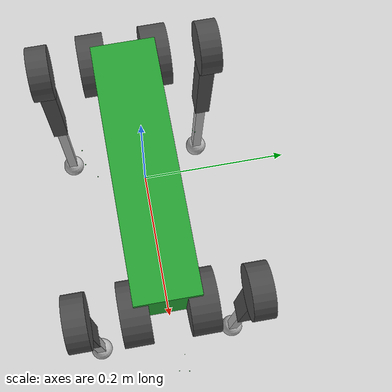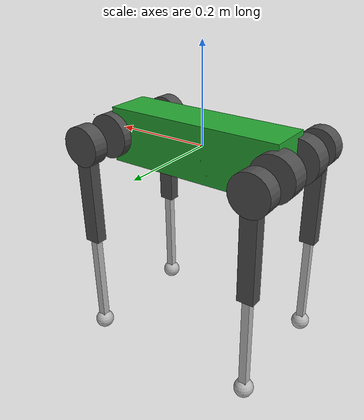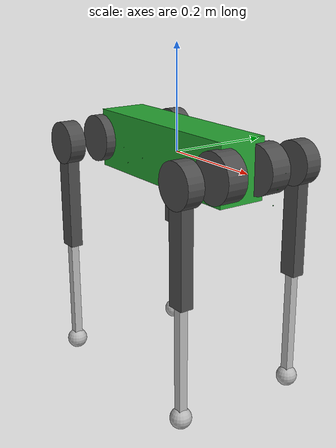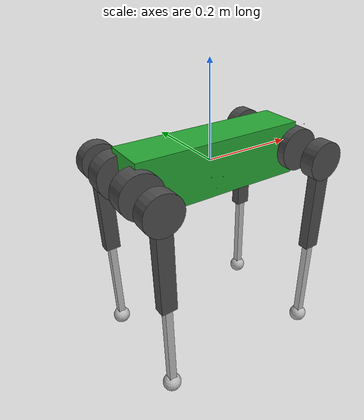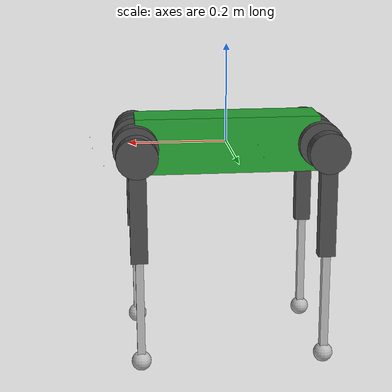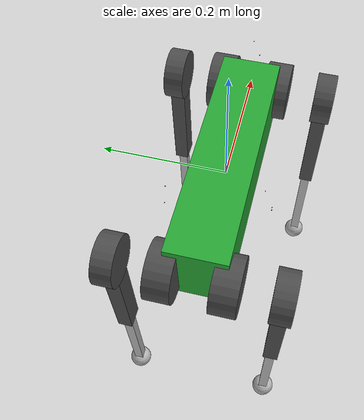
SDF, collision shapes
<sdf version='1.6'>
  <model name='go1_description'>
    <link name='base'>
      <pose frame=''>0 0 0 0 -0 0</pose>
      <inertial>
        <pose frame=''>0.022293 0.001987 -0.000501 0 -0 0</pose>
        <mass>5.20508</mass>
        <inertia>
          <ixx>0.0169483</ixx>
          <ixy>0.000460972</ixy>
          <ixz>0.000236597</ixz>
          <iyy>0.0657188</iyy>
          <iyz>3.62889e-05</iyz>
          <izz>0.0743887</izz>
        </inertia>
      </inertial>
      <collision name='base_fixed_joint_lump__trunk_collision'>
        <pose frame=''>0 0 0 0 -0 0</pose>
        <geometry>
          <box>
            <size>0.3762 0.0935 0.114</size>
          </box>
        </geometry>
        <surface>
          <contact>
            <ode>
              <kp>1e+06</kp>
              <kd>1</kd>
            </ode>
          </contact>
          <friction>
            <ode>
              <mu>0.2</mu>
              <mu2>0.2</mu2>
            </ode>
          </friction>
        </surface>
      </collision>
      <collision name='base_fixed_joint_lump__camera_chin_collision_1'>
        <pose frame=''>0.2522 0.0125 -0.0436 3.14159 1.57079 3e-06</pose>
        <geometry>
          <box>
            <size>0.001 0.001 0.001</size>
          </box>
        </geometry>
        <surface>
          <contact>
            <ode/>
          </contact>
          <friction>
            <ode/>
          </friction>
        </surface>
      </collision>
      <collision name='base_fixed_joint_lump__camera_face_collision_2'>
        <pose frame=''>0.2785 0.0125 0.0167 -3.14159 -0 0</pose>
        <geometry>
          <box>
            <size>0.001 0.001 0.001</size>
          </box>
        </geometry>
        <surface>
          <contact>
            <ode/>
          </contact>
          <friction>
            <ode/>
          </friction>
        </surface>
      </collision>
      <collision name='base_fixed_joint_lump__camera_left_collision_3'>
        <pose frame=''>-0.066 0.082 -0.0176 -3.14159 0.2618 1.5708</pose>
        <geometry>
          <box>
            <size>0.001 0.001 0.001</size>
          </box>
        </geometry>
        <surface>
          <contact>
            <ode/>
          </contact>
          <friction>
            <ode/>
          </friction>
        </surface>
      </collision>
      <collision name='base_fixed_joint_lump__camera_rearDown_collision_4'>
        <pose frame=''>-0.0825 0.0125 -0.04365 3.14159 1.57079 3e-06</pose>
        <geometry>
          <box>
            <size>0.001 0.001 0.001</size>
          </box>
        </geometry>
        <surface>
          <contact>
            <ode/>
          </contact>
          <friction>
            <ode/>
          </friction>
        </surface>
      </collision>
      <collision name='base_fixed_joint_lump__camera_right_collision_5'>
        <pose frame=''>-0.041 -0.082 -0.0176 -3.14159 0.2618 -1.5708</pose>
        <geometry>
          <box>
            <size>0.001 0.001 0.001</size>
          </box>
        </geometry>
        <surface>
          <contact>
            <ode/>
          </contact>
          <friction>
            <ode/>
          </friction>
        </surface>
      </collision>
      <collision name='base_fixed_joint_lump__imu_link_collision_6'>
        <pose frame=''>-0.01592 -0.06659 -0.00617 0 -0 0</pose>
        <geometry>
          <box>
            <size>0.001 0.001 0.001</size>
          </box>
        </geometry>
        <surface>
          <contact>
            <ode/>
          </contact>
          <friction>
            <ode>
              <mu>0.2</mu>
              <mu2>0.2</mu2>
            </ode>
          </friction>
        </surface>
      </collision>
      <collision name='base_fixed_joint_lump__ultraSound_face_collision_7'>
        <pose frame=''>0.2747 0 -0.0088 0 -0 0</pose>
        <geometry>
          <box>
            <size>0.001 0.001 0.001</size>
          </box>
        </geometry>
      </collision>
      <collision name='base_fixed_joint_lump__ultraSound_left_collision_8'>
        <pose frame=''>-0.0535 0.0826 0.00868 0 0.2618 1.5708</pose>
        <geometry>
          <box>
            <size>0.001 0.001 0.001</size>
          </box>
        </geometry>
      </collision>
      <collision name='base_fixed_joint_lump__ultraSound_right_collision_9'>
        <pose frame=''>-0.0535 -0.0826 0.00868 0 0.2618 -1.5708</pose>
        <geometry>
          <box>
            <size>0.001 0.001 0.001</size>
          </box>
        </geometry>
      </collision>
      <visual name='base_visual'>
        <pose frame=''>0 0 0 0 -0 0</pose>
        <geometry>
          <box>
            <size>0.001 0.001 0.001</size>
          </box>
        </geometry>
        <material>
          <script>
            <name>Gazebo/Green</name>
            <uri>file://media/materials/scripts/gazebo.material</uri>
          </script>
        </material>
      </visual>
      <visual name='base_fixed_joint_lump__trunk_visual_1'>
        <pose frame=''>0 0 0 0 -0 0</pose>
        <geometry>
          <mesh>
            <scale>1 1 1</scale>
            <uri>model://go1_description/meshes/trunk.dae</uri>
          </mesh>
        </geometry>
        <material>
          <script>
            <uri>__default__</uri>
            <name>__default__</name>
          </script>
        </material>
      </visual>
      <visual name='base_fixed_joint_lump__camera_chin_visual_2'>
        <pose frame=''>0.2522 0.0125 -0.0436 3.14159 1.57079 3e-06</pose>
        <geometry>
          <mesh>
            <scale>1 1 1</scale>
            <uri>model://go1_description/meshes/depthCamera.dae</uri>
          </mesh>
        </geometry>
        <material>
          <script>
            <uri>__default__</uri>
            <name>__default__</name>
          </script>
        </material>
      </visual>
      <visual name='base_fixed_joint_lump__camera_face_visual_3'>
        <pose frame=''>0.2785 0.0125 0.0167 -3.14159 -0 0</pose>
        <geometry>
          <mesh>
            <scale>1 1 1</scale>
            <uri>model://go1_description/meshes/depthCamera.dae</uri>
          </mesh>
        </geometry>
        <material>
          <script>
            <uri>__default__</uri>
            <name>__default__</name>
          </script>
        </material>
      </visual>
      <visual name='base_fixed_joint_lump__camera_left_visual_4'>
        <pose frame=''>-0.066 0.082 -0.0176 -3.14159 0.2618 1.5708</pose>
        <geometry>
          <mesh>
            <scale>1 1 1</scale>
            <uri>model://go1_description/meshes/depthCamera.dae</uri>
          </mesh>
        </geometry>
        <material>
          <script>
            <uri>__default__</uri>
            <name>__default__</name>
          </script>
        </material>
      </visual>
      <visual name='base_fixed_joint_lump__camera_rearDown_visual_5'>
        <pose frame=''>-0.0825 0.0125 -0.04365 3.14159 1.57079 3e-06</pose>
        <geometry>
          <mesh>
            <scale>1 1 1</scale>
            <uri>model://go1_description/meshes/depthCamera.dae</uri>
          </mesh>
        </geometry>
        <material>
          <script>
            <uri>__default__</uri>
            <name>__default__</name>
          </script>
        </material>
      </visual>
      <visual name='base_fixed_joint_lump__camera_right_visual_6'>
        <pose frame=''>-0.041 -0.082 -0.0176 -3.14159 0.2618 -1.5708</pose>
        <geometry>
          <mesh>
            <scale>1 1 1</scale>
            <uri>model://go1_description/meshes/depthCamera.dae</uri>
          </mesh>
        </geometry>
        <material>
          <script>
            <uri>__default__</uri>
            <name>__default__</name>
          </script>
        </material>
      </visual>
      <visual name='base_fixed_joint_lump__imu_link_visual_7'>
        <pose frame=''>-0.01592 -0.06659 -0.00617 0 -0 0</pose>
        <geometry>
          <box>
            <size>0.001 0.001 0.001</size>
          </box>
        </geometry>
        <material>
          <script>
            <name>Gazebo/Red</name>
            <uri>file://media/materials/scripts/gazebo.material</uri>
          </script>
        </material>
      </visual>
      <visual name='base_fixed_joint_lump__ultraSound_face_visual_8'>
        <pose frame=''>0.2747 0 -0.0088 0 -0 0</pose>
        <geometry>
          <mesh>
            <scale>1 1 1</scale>
            <uri>model://go1_description/meshes/ultraSound.dae</uri>
          </mesh>
        </geometry>
      </visual>
      <visual name='base_fixed_joint_lump__ultraSound_left_visual_9'>
        <pose frame=''>-0.0535 0.0826 0.00868 0 0.2618 1.5708</pose>
        <geometry>
          <mesh>
            <scale>1 1 1</scale>
            <uri>model://go1_description/meshes/ultraSound.dae</uri>
          </mesh>
        </geometry>
      </visual>
      <visual name='base_fixed_joint_lump__ultraSound_right_visual_10'>
        <pose frame=''>-0.0535 -0.0826 0.00868 0 0.2618 -1.5708</pose>
        <geometry>
          <mesh>
            <scale>1 1 1</scale>
            <uri>model://go1_description/meshes/ultraSound.dae</uri>
          </mesh>
        </geometry>
      </visual>
      <velocity_decay/>
      <velocity_decay/>
      <velocity_decay/>
      <sensor name='camera_chin_camera' type='depth'>
        <update_rate>16</update_rate>
        <camera name='__default__'>
          <horizontal_fov>2.094</horizontal_fov>
          <image>
            <width>928</width>
            <height>800</height>
            <format>R8G8B8</format>
          </image>
          <clip>
            <near>0.1</near>
            <far>5</far>
          </clip>
        </camera>
        <plugin name='camera_chin_controller' filename='libgazebo_ros_openni_kinect.so'>
          <baseline>0.025</baseline>
          <alwaysOn>1</alwaysOn>
          <updateRate>0.0</updateRate>
          <cameraName>camera_chin_ir</cameraName>
          <imageTopicName>/camera_chin/color/image_raw</imageTopicName>
          <cameraInfoTopicName>/camera_chin/color/camera_info</cameraInfoTopicName>
          <depthImageTopicName>/camera_chin/depth/image_raw</depthImageTopicName>
          <depthImageInfoTopicName>/camera_chin/depth/camera_info</depthImageInfoTopicName>
          <pointCloudTopicName>/cam2/point_cloud_chin</pointCloudTopicName>
          <frameName>camera_optical_chin</frameName>
          <pointCloudCutoff>0.1</pointCloudCutoff>
          <pointCloudCutoffMax>1.5</pointCloudCutoffMax>
          <distortionK1>0.0</distortionK1>
          <distortionK2>0.0</distortionK2>
          <distortionK3>0.0</distortionK3>
          <distortionT1>0.0</distortionT1>
          <distortionT2>0.0</distortionT2>
          <CxPrime>0</CxPrime>
          <Cx>0.0045</Cx>
          <Cy>0.0039</Cy>
          <focalLength>0</focalLength>
          <hackBaseline>0</hackBaseline>
        </plugin>
        <pose frame=''>0.2522 0.0125 -0.0436 3.14159 1.57079 3e-06</pose>
      </sensor>
      <velocity_decay/>
      <sensor name='camera_face_camera' type='depth'>
        <update_rate>16</update_rate>
        <camera name='__default__'>
          <horizontal_fov>2.094</horizontal_fov>
          <image>
            <width>928</width>
            <height>800</height>
            <format>R8G8B8</format>
          </image>
          <clip>
            <near>0.1</near>
            <far>5</far>
          </clip>
        </camera>
        <plugin name='camera_face_controller' filename='libgazebo_ros_openni_kinect.so'>
          <baseline>0.025</baseline>
          <alwaysOn>1</alwaysOn>
          <updateRate>0.0</updateRate>
          <cameraName>camera_face_ir</cameraName>
          <imageTopicName>/camera_face/color/image_raw</imageTopicName>
          <cameraInfoTopicName>/camera_face/color/camera_info</cameraInfoTopicName>
          <depthImageTopicName>/camera_face/depth/image_raw</depthImageTopicName>
          <depthImageInfoTopicName>/camera_face/depth/camera_info</depthImageInfoTopicName>
          <pointCloudTopicName>/cam1/point_cloud_face</pointCloudTopicName>
          <frameName>camera_optical_face</frameName>
          <pointCloudCutoff>0.1</pointCloudCutoff>
          <pointCloudCutoffMax>1.5</pointCloudCutoffMax>
          <distortionK1>0.0</distortionK1>
          <distortionK2>0.0</distortionK2>
          <distortionK3>0.0</distortionK3>
          <distortionT1>0.0</distortionT1>
          <distortionT2>0.0</distortionT2>
          <CxPrime>0</CxPrime>
          <Cx>0.0045</Cx>
          <Cy>0.0039</Cy>
          <focalLength>0</focalLength>
          <hackBaseline>0</hackBaseline>
        </plugin>
        <pose frame=''>0.2785 0.0125 0.0167 -3.14159 -0 0</pose>
      </sensor>
      <velocity_decay/>
      <sensor name='camera_left_camera' type='depth'>
        <update_rate>16</update_rate>
        <camera name='__default__'>
          <horizontal_fov>2.094</horizontal_fov>
          <image>
            <width>928</width>
            <height>800</height>
            <format>R8G8B8</format>
          </image>
          <clip>
            <near>0.1</near>
            <far>5</far>
          </clip>
        </camera>
        <plugin name='camera_left_controller' filename='libgazebo_ros_openni_kinect.so'>
          <baseline>0.025</baseline>
          <alwaysOn>1</alwaysOn>
          <updateRate>0.0</updateRate>
          <cameraName>camera_left_ir</cameraName>
          <imageTopicName>/camera_left/color/image_raw</imageTopicName>
          <cameraInfoTopicName>/camera_left/color/camera_info</cameraInfoTopicName>
          <depthImageTopicName>/camera_left/depth/image_raw</depthImageTopicName>
          <depthImageInfoTopicName>/camera_left/depth/camera_info</depthImageInfoTopicName>
          <pointCloudTopicName>/cam3/point_cloud_left</pointCloudTopicName>
          <frameName>camera_optical_left</frameName>
          <pointCloudCutoff>0.1</pointCloudCutoff>
          <pointCloudCutoffMax>1.5</pointCloudCutoffMax>
          <distortionK1>0.0</distortionK1>
          <distortionK2>0.0</distortionK2>
          <distortionK3>0.0</distortionK3>
          <distortionT1>0.0</distortionT1>
          <distortionT2>0.0</distortionT2>
          <CxPrime>0</CxPrime>
          <Cx>0.0045</Cx>
          <Cy>0.0039</Cy>
          <focalLength>0</focalLength>
          <hackBaseline>0</hackBaseline>
        </plugin>
        <pose frame=''>-0.066 0.082 -0.0176 -3.14159 0.2618 1.5708</pose>
      </sensor>
      <velocity_decay/>
      <sensor name='camera_rearDown_camera' type='depth'>
        <update_rate>16</update_rate>
        <camera name='__default__'>
          <horizontal_fov>2.094</horizontal_fov>
          <image>
            <width>928</width>
            <height>800</height>
            <format>R8G8B8</format>
          </image>
          <clip>
            <near>0.1</near>
            <far>5</far>
          </clip>
        </camera>
        <plugin name='camera_rearDown_controller' filename='libgazebo_ros_openni_kinect.so'>
          <baseline>0.025</baseline>
          <alwaysOn>1</alwaysOn>
          <updateRate>0.0</updateRate>
          <cameraName>camera_rearDown_ir</cameraName>
          <imageTopicName>/camera_rearDown/color/image_raw</imageTopicName>
          <cameraInfoTopicName>/camera_rearDown/color/camera_info</cameraInfoTopicName>
          <depthImageTopicName>/camera_rearDown/depth/image_raw</depthImageTopicName>
          <depthImageInfoTopicName>/camera_rearDown/depth/camera_info</depthImageInfoTopicName>
          <pointCloudTopicName>/cam5/point_cloud_rearDown</pointCloudTopicName>
          <frameName>camera_optical_rearDown</frameName>
          <pointCloudCutoff>0.1</pointCloudCutoff>
          <pointCloudCutoffMax>1.5</pointCloudCutoffMax>
          <distortionK1>0.0</distortionK1>
          <distortionK2>0.0</distortionK2>
          <distortionK3>0.0</distortionK3>
          <distortionT1>0.0</distortionT1>
          <distortionT2>0.0</distortionT2>
          <CxPrime>0</CxPrime>
          <Cx>0.0045</Cx>
          <Cy>0.0039</Cy>
          <focalLength>0</focalLength>
          <hackBaseline>0</hackBaseline>
        </plugin>
        <pose frame=''>-0.0825 0.0125 -0.04365 3.14159 1.57079 3e-06</pose>
      </sensor>
      <velocity_decay/>
      <sensor name='camera_right_camera' type='depth'>
        <update_rate>16</update_rate>
        <camera name='__default__'>
          <horizontal_fov>2.094</horizontal_fov>
          <image>
            <width>928</width>
            <height>800</height>
            <format>R8G8B8</format>
          </image>
          <clip>
            <near>0.1</near>
            <far>5</far>
          </clip>
        </camera>
        <plugin name='camera_right_controller' filename='libgazebo_ros_openni_kinect.so'>
          <baseline>0.025</baseline>
          <alwaysOn>1</alwaysOn>
          <updateRate>0.0</updateRate>
          <cameraName>camera_right_ir</cameraName>
          <imageTopicName>/camera_right/color/image_raw</imageTopicName>
          <cameraInfoTopicName>/camera_right/color/camera_info</cameraInfoTopicName>
          <depthImageTopicName>/camera_right/depth/image_raw</depthImageTopicName>
          <depthImageInfoTopicName>/camera_right/depth/camera_info</depthImageInfoTopicName>
          <pointCloudTopicName>/cam4/point_cloud_right</pointCloudTopicName>
          <frameName>camera_optical_right</frameName>
          <pointCloudCutoff>0.1</pointCloudCutoff>
          <pointCloudCutoffMax>1.5</pointCloudCutoffMax>
          <distortionK1>0.0</distortionK1>
          <distortionK2>0.0</distortionK2>
          <distortionK3>0.0</distortionK3>
          <distortionT1>0.0</distortionT1>
          <distortionT2>0.0</distortionT2>
          <CxPrime>0</CxPrime>
          <Cx>0.0045</Cx>
          <Cy>0.0039</Cy>
          <focalLength>0</focalLength>
          <hackBaseline>0</hackBaseline>
        </plugin>
        <pose frame=''>-0.041 -0.082 -0.0176 -3.14159 0.2618 -1.5708</pose>
      </sensor>
      <velocity_decay/>
      <gravity>1</gravity>
      <sensor name='imu_sensor' type='imu'>
        <always_on>1</always_on>
        <update_rate>1000</update_rate>
        <visualize>1</visualize>
        <topic>__default_topic__</topic>
        <plugin name='imu_plugin' filename='libgazebo_ros_imu_sensor.so'>
          <topicName>trunk_imu</topicName>
          <bodyName>imu_link</bodyName>
          <updateRateHZ>1000.0</updateRateHZ>
          <gaussianNoise>0.0</gaussianNoise>
          <xyzOffset>0 0 0</xyzOffset>
          <rpyOffset>0 0 0</rpyOffset>
          <frameName>imu_link</frameName>
        </plugin>
        <pose frame=''>-0.01592 -0.06659 -0.00617 0 -0 0</pose>
      </sensor>
      <gravity>1</gravity>
      <velocity_decay/>
    </link>
    <link name='FL_hip'>
      <pose frame=''>0.1881 0.04675 0 0 -0 0</pose>
      <inertial>
        <pose frame=''>-0.00541 -0.00074 6e-06 0 -0 0</pose>
        <mass>0.591</mass>
        <inertia>
          <ixx>0.000374268</ixx>
          <ixy>3.68444e-05</ixy>
          <ixz>-9.86754e-07</ixz>
          <iyy>0.000635924</iyy>
          <iyz>-1.17289e-06</iyz>
          <izz>0.000457647</izz>
        </inertia>
      </inertial>
      <collision name='FL_hip_collision'>
        <pose frame=''>0 0 0 1.5708 -0 0</pose>
        <geometry>
          <cylinder>
            <length>0.04</length>
            <radius>0.046</radius>
          </cylinder>
        </geometry>
        <surface>
          <contact>
            <ode/>
          </contact>
          <friction>
            <ode>
              <mu>0.2</mu>
              <mu2>0.2</mu2>
            </ode>
          </friction>
        </surface>
      </collision>
      <collision name='FL_hip_fixed_joint_lump__FL_thigh_shoulder_collision_1'>
        <pose frame=''>0 0.08 0 1.5708 -0 0</pose>
        <geometry>
          <cylinder>
            <length>0.032</length>
            <radius>0.041</radius>
          </cylinder>
        </geometry>
      </collision>
      <visual name='FL_hip_visual'>
        <pose frame=''>0 0 0 0 -0 0</pose>
        <geometry>
          <mesh>
            <scale>1 1 1</scale>
            <uri>model://go1_description/meshes/hip.dae</uri>
          </mesh>
        </geometry>
        <material>
          <script>
            <name>Gazebo/DarkGrey</name>
            <uri>file://media/materials/scripts/gazebo.material</uri>
          </script>
        </material>
      </visual>
      <gravity>1</gravity>
      <velocity_decay/>
    </link>
    <joint name='FL_hip_joint' type='revolute'>
      <child>FL_hip</child>
      <parent>base</parent>
      <axis>
        <xyz>1 0 0</xyz>
        <limit>
          <lower>-1.0472</lower>
          <upper>1.0472</upper>
          <effort>23.7</effort>
          <velocity>30.1</velocity>
        </limit>
        <dynamics>
          <damping>0.01</damping>
          <friction>0.2</friction>
          <spring_reference>0</spring_reference>
          <spring_stiffness>0</spring_stiffness>
        </dynamics>
        <use_parent_model_frame>0</use_parent_model_frame>
      </axis>
    </joint>
    <link name='FL_thigh'>
      <pose frame=''>0.1881 0.12675 0 0 -0 0</pose>
      <inertial>
        <pose frame=''>-0.003468 -0.018947 -0.032736 0 -0 0</pose>
        <mass>0.92</mass>
        <inertia>
          <ixx>0.00585156</ixx>
          <ixy>1.78328e-06</ixy>
          <ixz>0.000328291</ixz>
          <iyy>0.00559616</iyy>
          <iyz>2.14307e-05</iyz>
          <izz>0.00107157</izz>
        </inertia>
      </inertial>
      <collision name='FL_thigh_collision'>
        <pose frame=''>0 0 -0.1065 3.14159 1.57079 3.14159</pose>
        <geometry>
          <box>
            <size>0.213 0.0245 0.034</size>
          </box>
        </geometry>
        <surface>
          <contact>
            <ode>
              <kp>1e+06</kp>
              <kd>1</kd>
            </ode>
          </contact>
          <friction>
            <ode>
              <mu>0.2</mu>
              <mu2>0.2</mu2>
            </ode>
          </friction>
        </surface>
      </collision>
      <visual name='FL_thigh_visual'>
        <pose frame=''>0 0 0 0 -0 0</pose>
        <geometry>
          <mesh>
            <scale>1 1 1</scale>
            <uri>model://go1_description/meshes/thigh.dae</uri>
          </mesh>
        </geometry>
        <material>
          <script>
            <name>Gazebo/DarkGrey</name>
            <uri>file://media/materials/scripts/gazebo.material</uri>
          </script>
        </material>
      </visual>
      <gravity>1</gravity>
      <velocity_decay/>
      <self_collide>1</self_collide>
    </link>
    <joint name='FL_thigh_joint' type='revolute'>
      <child>FL_thigh</child>
      <parent>FL_hip</parent>
      <axis>
        <xyz>0 1 0</xyz>
        <limit>
          <lower>-0.663225</lower>
          <upper>2.96706</upper>
          <effort>23.7</effort>
          <velocity>30.1</velocity>
        </limit>
        <dynamics>
          <damping>0.01</damping>
          <friction>0.2</friction>
          <spring_reference>0</spring_reference>
          <spring_stiffness>0</spring_stiffness>
        </dynamics>
        <use_parent_model_frame>0</use_parent_model_frame>
      </axis>
    </joint>
    <link name='FL_calf'>
      <pose frame=''>0.1881 0.12675 -0.213 0 -0 0</pose>
      <inertial>
        <pose frame=''>0.004311 0.000896 -0.150771 0 -0 0</pose>
        <mass>0.191</mass>
        <inertia>
          <ixx>0.00328762</ixx>
          <ixy>1.1028e-06</ixy>
          <ixz>-0.00012883</ixz>
          <iyy>0.00330576</iyy>
          <iyz>-2.92778e-05</iyz>
          <izz>4.15697e-05</izz>
        </inertia>
      </inertial>
      <collision name='FL_calf_collision'>
        <pose frame=''>0 0 -0.1065 3.14159 1.57079 3.14159</pose>
        <geometry>
          <box>
            <size>0.213 0.016 0.016</size>
          </box>
        </geometry>
        <surface>
          <contact>
            <ode/>
          </contact>
          <friction>
            <ode>
              <mu>0.2</mu>
              <mu2>0.2</mu2>
            </ode>
          </friction>
        </surface>
      </collision>
      <collision name='FL_calf_fixed_joint_lump__FL_foot_collision_1'>
        <pose frame=''>0 0 -0.213 0 -0 0</pose>
        <geometry>
          <sphere>
            <radius>0.02</radius>
          </sphere>
        </geometry>
        <surface>
          <contact>
            <ode>
              <kp>1e+06</kp>
              <kd>1</kd>
            </ode>
          </contact>
          <friction>
            <ode>
              <mu>0.6</mu>
              <mu2>0.6</mu2>
            </ode>
          </friction>
        </surface>
      </collision>
      <visual name='FL_calf_visual'>
        <pose frame=''>0 0 0 0 -0 0</pose>
        <geometry>
          <mesh>
            <scale>1 1 1</scale>
            <uri>model://go1_description/meshes/calf.dae</uri>
          </mesh>
        </geometry>
        <material>
          <script>
            <uri>__default__</uri>
            <name>__default__</name>
          </script>
        </material>
      </visual>
      <visual name='FL_calf_fixed_joint_lump__FL_foot_visual_1'>
        <pose frame=''>0 0 -0.213 0 -0 0</pose>
        <geometry>
          <sphere>
            <radius>0.01</radius>
          </sphere>
        </geometry>
        <plugin name='drawForcePlugin' filename='libunitreeDrawForcePlugin.so'>
          <topicName>FL_foot_contact</topicName>
        </plugin>
        <material>
          <script>
            <name>Gazebo/DarkGrey</name>
            <uri>file://media/materials/scripts/gazebo.material</uri>
          </script>
        </material>
      </visual>
      <velocity_decay/>
      <sensor name='FL_foot_contact' type='contact'>
        <update_rate>100</update_rate>
        <plugin name='contactPlugin' filename='libunitreeFootContactPlugin.so'/>
        <contact>
          <collision>FL_calf_fixed_joint_lump__FL_foot_collision_1</collision>
          <topic>__default_topic__</topic>
        </contact>
      </sensor>
      <velocity_decay/>
      <self_collide>1</self_collide>
      <velocity_decay/>
      <gravity>1</gravity>
      <velocity_decay/>
      <self_collide>1</self_collide>
    </link>
    <joint name='FL_calf_joint' type='revolute'>
      <child>FL_calf</child>
      <parent>FL_thigh</parent>
      <axis>
        <xyz>0 1 0</xyz>
        <limit>
          <lower>-2.72271</lower>
          <upper>-0.837758</upper>
          <effort>23.7</effort>
          <velocity>30.1</velocity>
        </limit>
        <dynamics>
          <damping>0.01</damping>
          <friction>0.2</friction>
          <spring_reference>0</spring_reference>
          <spring_stiffness>0</spring_stiffness>
        </dynamics>
        <use_parent_model_frame>0</use_parent_model_frame>
      </axis>
    </joint>
    <link name='FR_hip'>
      <pose frame=''>0.1881 -0.04675 0 0 -0 0</pose>
      <inertial>
        <pose frame=''>-0.00541 0.00074 6e-06 0 -0 0</pose>
        <mass>0.591</mass>
        <inertia>
          <ixx>0.000374268</ixx>
          <ixy>-3.68444e-05</ixy>
          <ixz>-9.86754e-07</ixz>
          <iyy>0.000635924</iyy>
          <iyz>1.17289e-06</iyz>
          <izz>0.000457647</izz>
        </inertia>
      </inertial>
      <collision name='FR_hip_collision'>
        <pose frame=''>0 0 0 1.5708 -0 0</pose>
        <geometry>
          <cylinder>
            <length>0.04</length>
            <radius>0.046</radius>
          </cylinder>
        </geometry>
        <surface>
          <contact>
            <ode/>
          </contact>
          <friction>
            <ode>
              <mu>0.2</mu>
              <mu2>0.2</mu2>
            </ode>
          </friction>
        </surface>
      </collision>
      <collision name='FR_hip_fixed_joint_lump__FR_thigh_shoulder_collision_1'>
        <pose frame=''>0 -0.08 0 1.5708 -0 0</pose>
        <geometry>
          <cylinder>
            <length>0.032</length>
            <radius>0.041</radius>
          </cylinder>
        </geometry>
      </collision>
      <visual name='FR_hip_visual'>
        <pose frame=''>0 0 0 -3.14159 -0 0</pose>
        <geometry>
          <mesh>
            <scale>1 1 1</scale>
            <uri>model://go1_description/meshes/hip.dae</uri>
          </mesh>
        </geometry>
        <material>
          <script>
            <name>Gazebo/DarkGrey</name>
            <uri>file://media/materials/scripts/gazebo.material</uri>
          </script>
        </material>
      </visual>
      <gravity>1</gravity>
      <velocity_decay/>
    </link>
    <joint name='FR_hip_joint' type='revolute'>
      <child>FR_hip</child>
      <parent>base</parent>
      <axis>
        <xyz>1 0 0</xyz>
        <limit>
          <lower>-1.0472</lower>
          <upper>1.0472</upper>
          <effort>23.7</effort>
          <velocity>30.1</velocity>
        </limit>
        <dynamics>
          <damping>0.01</damping>
          <friction>0.2</friction>
          <spring_reference>0</spring_reference>
          <spring_stiffness>0</spring_stiffness>
        </dynamics>
        <use_parent_model_frame>0</use_parent_model_frame>
      </axis>
    </joint>
    <link name='FR_thigh'>
      <pose frame=''>0.1881 -0.12675 0 0 -0 0</pose>
      <inertial>
        <pose frame=''>-0.003468 0.018947 -0.032736 0 -0 0</pose>
        <mass>0.92</mass>
        <inertia>
          <ixx>0.00585156</ixx>
          <ixy>-1.78328e-06</ixy>
          <ixz>0.000328291</ixz>
          <iyy>0.00559616</iyy>
          <iyz>-2.14307e-05</iyz>
          <izz>0.00107157</izz>
        </inertia>
      </inertial>
      <collision name='FR_thigh_collision'>
        <pose frame=''>0 0 -0.1065 3.14159 1.57079 3.14159</pose>
        <geometry>
          <box>
            <size>0.213 0.0245 0.034</size>
          </box>
        </geometry>
        <surface>
          <contact>
            <ode>
              <kp>1e+06</kp>
              <kd>1</kd>
            </ode>
          </contact>
          <friction>
            <ode>
              <mu>0.2</mu>
              <mu2>0.2</mu2>
            </ode>
          </friction>
        </surface>
      </collision>
      <visual name='FR_thigh_visual'>
        <pose frame=''>0 0 0 0 -0 0</pose>
        <geometry>
          <mesh>
            <scale>1 1 1</scale>
            <uri>model://go1_description/meshes/thigh_mirror.dae</uri>
          </mesh>
        </geometry>
        <material>
          <script>
            <name>Gazebo/DarkGrey</name>
            <uri>file://media/materials/scripts/gazebo.material</uri>
          </script>
        </material>
      </visual>
      <gravity>1</gravity>
      <velocity_decay/>
      <self_collide>1</self_collide>
    </link>
    <joint name='FR_thigh_joint' type='revolute'>
      <child>FR_thigh</child>
      <parent>FR_hip</parent>
      <axis>
        <xyz>0 1 0</xyz>
        <limit>
          <lower>-0.663225</lower>
          <upper>2.96706</upper>
          <effort>23.7</effort>
          <velocity>30.1</velocity>
        </limit>
        <dynamics>
          <damping>0.01</damping>
          <friction>0.2</friction>
          <spring_reference>0</spring_reference>
          <spring_stiffness>0</spring_stiffness>
        </dynamics>
        <use_parent_model_frame>0</use_parent_model_frame>
      </axis>
    </joint>
    <link name='FR_calf'>
      <pose frame=''>0.1881 -0.12675 -0.213 0 -0 0</pose>
      <inertial>
        <pose frame=''>0.004311 0.000896 -0.150771 0 -0 0</pose>
        <mass>0.191</mass>
        <inertia>
          <ixx>0.00328762</ixx>
          <ixy>1.1028e-06</ixy>
          <ixz>-0.00012883</ixz>
          <iyy>0.00330576</iyy>
          <iyz>-2.92778e-05</iyz>
          <izz>4.15697e-05</izz>
        </inertia>
      </inertial>
      <collision name='FR_calf_collision'>
        <pose frame=''>0 0 -0.1065 3.14159 1.57079 3.14159</pose>
        <geometry>
          <box>
            <size>0.213 0.016 0.016</size>
          </box>
        </geometry>
        <surface>
          <contact>
            <ode/>
          </contact>
          <friction>
            <ode>
              <mu>0.2</mu>
              <mu2>0.2</mu2>
            </ode>
          </friction>
        </surface>
      </collision>
      <collision name='FR_calf_fixed_joint_lump__FR_foot_collision_1'>
        <pose frame=''>0 0 -0.213 0 -0 0</pose>
        <geometry>
          <sphere>
            <radius>0.02</radius>
          </sphere>
        </geometry>
        <surface>
          <contact>
            <ode>
              <kp>1e+06</kp>
              <kd>1</kd>
            </ode>
          </contact>
          <friction>
            <ode>
              <mu>0.6</mu>
              <mu2>0.6</mu2>
            </ode>
          </friction>
        </surface>
      </collision>
      <visual name='FR_calf_visual'>
        <pose frame=''>0 0 0 0 -0 0</pose>
        <geometry>
          <mesh>
            <scale>1 1 1</scale>
            <uri>model://go1_description/meshes/calf.dae</uri>
          </mesh>
        </geometry>
        <material>
          <script>
            <uri>__default__</uri>
            <name>__default__</name>
          </script>
        </material>
      </visual>
      <visual name='FR_calf_fixed_joint_lump__FR_foot_visual_1'>
        <pose frame=''>0 0 -0.213 0 -0 0</pose>
        <geometry>
          <sphere>
            <radius>0.01</radius>
          </sphere>
        </geometry>
        <plugin name='drawForcePlugin' filename='libunitreeDrawForcePlugin.so'>
          <topicName>FR_foot_contact</topicName>
        </plugin>
        <material>
          <script>
            <name>Gazebo/DarkGrey</name>
            <uri>file://media/materials/scripts/gazebo.material</uri>
          </script>
        </material>
      </visual>
      <velocity_decay/>
      <sensor name='FR_foot_contact' type='contact'>
        <update_rate>100</update_rate>
        <plugin name='contactPlugin' filename='libunitreeFootContactPlugin.so'/>
        <contact>
          <collision>FR_calf_fixed_joint_lump__FR_foot_collision_1</collision>
          <topic>__default_topic__</topic>
        </contact>
      </sensor>
      <velocity_decay/>
      <self_collide>1</self_collide>
      <velocity_decay/>
      <gravity>1</gravity>
      <velocity_decay/>
      <self_collide>1</self_collide>
    </link>
    <joint name='FR_calf_joint' type='revolute'>
      <child>FR_calf</child>
      <parent>FR_thigh</parent>
      <axis>
        <xyz>0 1 0</xyz>
        <limit>
          <lower>-2.72271</lower>
          <upper>-0.837758</upper>
          <effort>23.7</effort>
          <velocity>30.1</velocity>
        </limit>
        <dynamics>
          <damping>0.01</damping>
          <friction>0.2</friction>
          <spring_reference>0</spring_reference>
          <spring_stiffness>0</spring_stiffness>
        </dynamics>
        <use_parent_model_frame>0</use_parent_model_frame>
      </axis>
    </joint>
    <link name='RL_hip'>
      <pose frame=''>-0.1881 0.04675 0 0 -0 0</pose>
      <inertial>
        <pose frame=''>0.00541 -0.00074 6e-06 0 -0 0</pose>
        <mass>0.591</mass>
        <inertia>
          <ixx>0.000374268</ixx>
          <ixy>-3.68444e-05</ixy>
          <ixz>9.86754e-07</ixz>
          <iyy>0.000635924</iyy>
          <iyz>-1.17289e-06</iyz>
          <izz>0.000457647</izz>
        </inertia>
      </inertial>
      <collision name='RL_hip_collision'>
        <pose frame=''>0 0 0 1.5708 -0 0</pose>
        <geometry>
          <cylinder>
            <length>0.04</length>
            <radius>0.046</radius>
          </cylinder>
        </geometry>
        <surface>
          <contact>
            <ode/>
          </contact>
          <friction>
            <ode>
              <mu>0.2</mu>
              <mu2>0.2</mu2>
            </ode>
          </friction>
        </surface>
      </collision>
      <collision name='RL_hip_fixed_joint_lump__RL_thigh_shoulder_collision_1'>
        <pose frame=''>0 0.08 0 1.5708 -0 0</pose>
        <geometry>
          <cylinder>
            <length>0.032</length>
            <radius>0.041</radius>
          </cylinder>
        </geometry>
      </collision>
      <visual name='RL_hip_visual'>
        <pose frame=''>0 0 0 3.14159 -0 3.14159</pose>
        <geometry>
          <mesh>
            <scale>1 1 1</scale>
            <uri>model://go1_description/meshes/hip.dae</uri>
          </mesh>
        </geometry>
        <material>
          <script>
            <name>Gazebo/DarkGrey</name>
            <uri>file://media/materials/scripts/gazebo.material</uri>
          </script>
        </material>
      </visual>
      <gravity>1</gravity>
      <velocity_decay/>
    </link>
    <joint name='RL_hip_joint' type='revolute'>
      <child>RL_hip</child>
      <parent>base</parent>
      <axis>
        <xyz>1 0 0</xyz>
        <limit>
          <lower>-1.0472</lower>
          <upper>1.0472</upper>
          <effort>23.7</effort>
          <velocity>30.1</velocity>
        </limit>
        <dynamics>
          <damping>0.01</damping>
          <friction>0.2</friction>
          <spring_reference>0</spring_reference>
          <spring_stiffness>0</spring_stiffness>
        </dynamics>
        <use_parent_model_frame>0</use_parent_model_frame>
      </axis>
    </joint>
    <link name='RL_thigh'>
      <pose frame=''>-0.1881 0.12675 0 0 -0 0</pose>
      <inertial>
        <pose frame=''>-0.003468 -0.018947 -0.032736 0 -0 0</pose>
        <mass>0.92</mass>
        <inertia>
          <ixx>0.00585156</ixx>
          <ixy>1.78328e-06</ixy>
          <ixz>0.000328291</ixz>
          <iyy>0.00559616</iyy>
          <iyz>2.14307e-05</iyz>
          <izz>0.00107157</izz>
        </inertia>
      </inertial>
      <collision name='RL_thigh_collision'>
        <pose frame=''>0 0 -0.1065 3.14159 1.57079 3.14159</pose>
        <geometry>
          <box>
            <size>0.213 0.0245 0.034</size>
          </box>
        </geometry>
        <surface>
          <contact>
            <ode>
              <kp>1e+06</kp>
              <kd>1</kd>
            </ode>
          </contact>
          <friction>
            <ode>
              <mu>0.2</mu>
              <mu2>0.2</mu2>
            </ode>
          </friction>
        </surface>
      </collision>
      <visual name='RL_thigh_visual'>
        <pose frame=''>0 0 0 0 -0 0</pose>
        <geometry>
          <mesh>
            <scale>1 1 1</scale>
            <uri>model://go1_description/meshes/thigh.dae</uri>
          </mesh>
        </geometry>
        <material>
          <script>
            <name>Gazebo/DarkGrey</name>
            <uri>file://media/materials/scripts/gazebo.material</uri>
          </script>
        </material>
      </visual>
      <gravity>1</gravity>
      <velocity_decay/>
      <self_collide>1</self_collide>
    </link>
    <joint name='RL_thigh_joint' type='revolute'>
      <child>RL_thigh</child>
      <parent>RL_hip</parent>
      <axis>
        <xyz>0 1 0</xyz>
        <limit>
          <lower>-0.663225</lower>
          <upper>2.96706</upper>
          <effort>23.7</effort>
          <velocity>30.1</velocity>
        </limit>
        <dynamics>
          <damping>0.01</damping>
          <friction>0.2</friction>
          <spring_reference>0</spring_reference>
          <spring_stiffness>0</spring_stiffness>
        </dynamics>
        <use_parent_model_frame>0</use_parent_model_frame>
      </axis>
    </joint>
    <link name='RL_calf'>
      <pose frame=''>-0.1881 0.12675 -0.213 0 -0 0</pose>
      <inertial>
        <pose frame=''>0.004311 0.000896 -0.150771 0 -0 0</pose>
        <mass>0.191</mass>
        <inertia>
          <ixx>0.00328762</ixx>
          <ixy>1.1028e-06</ixy>
          <ixz>-0.00012883</ixz>
          <iyy>0.00330576</iyy>
          <iyz>-2.92778e-05</iyz>
          <izz>4.15697e-05</izz>
        </inertia>
      </inertial>
      <collision name='RL_calf_collision'>
        <pose frame=''>0 0 -0.1065 3.14159 1.57079 3.14159</pose>
        <geometry>
          <box>
            <size>0.213 0.016 0.016</size>
          </box>
        </geometry>
        <surface>
          <contact>
            <ode/>
          </contact>
          <friction>
            <ode>
              <mu>0.2</mu>
              <mu2>0.2</mu2>
            </ode>
          </friction>
        </surface>
      </collision>
      <collision name='RL_calf_fixed_joint_lump__RL_foot_collision_1'>
        <pose frame=''>0 0 -0.213 0 -0 0</pose>
        <geometry>
          <sphere>
            <radius>0.02</radius>
          </sphere>
        </geometry>
        <surface>
          <contact>
            <ode>
              <kp>1e+06</kp>
              <kd>1</kd>
            </ode>
          </contact>
          <friction>
            <ode>
              <mu>0.6</mu>
              <mu2>0.6</mu2>
            </ode>
          </friction>
        </surface>
      </collision>
      <visual name='RL_calf_visual'>
        <pose frame=''>0 0 0 0 -0 0</pose>
        <geometry>
          <mesh>
            <scale>1 1 1</scale>
            <uri>model://go1_description/meshes/calf.dae</uri>
          </mesh>
        </geometry>
        <material>
          <script>
            <uri>__default__</uri>
            <name>__default__</name>
          </script>
        </material>
      </visual>
      <visual name='RL_calf_fixed_joint_lump__RL_foot_visual_1'>
        <pose frame=''>0 0 -0.213 0 -0 0</pose>
        <geometry>
          <sphere>
            <radius>0.01</radius>
          </sphere>
        </geometry>
        <plugin name='drawForcePlugin' filename='libunitreeDrawForcePlugin.so'>
          <topicName>RL_foot_contact</topicName>
        </plugin>
        <material>
          <script>
            <name>Gazebo/DarkGrey</name>
            <uri>file://media/materials/scripts/gazebo.material</uri>
          </script>
        </material>
      </visual>
      <velocity_decay/>
      <sensor name='RL_foot_contact' type='contact'>
        <update_rate>100</update_rate>
        <plugin name='contactPlugin' filename='libunitreeFootContactPlugin.so'/>
        <contact>
          <collision>RL_calf_fixed_joint_lump__RL_foot_collision_1</collision>
          <topic>__default_topic__</topic>
        </contact>
      </sensor>
      <velocity_decay/>
      <self_collide>1</self_collide>
      <velocity_decay/>
      <gravity>1</gravity>
      <velocity_decay/>
      <self_collide>1</self_collide>
    </link>
    <joint name='RL_calf_joint' type='revolute'>
      <child>RL_calf</child>
      <parent>RL_thigh</parent>
      <axis>
        <xyz>0 1 0</xyz>
        <limit>
          <lower>-2.72271</lower>
          <upper>-0.837758</upper>
          <effort>23.7</effort>
          <velocity>30.1</velocity>
        </limit>
        <dynamics>
          <damping>0.01</damping>
          <friction>0.2</friction>
          <spring_reference>0</spring_reference>
          <spring_stiffness>0</spring_stiffness>
        </dynamics>
        <use_parent_model_frame>0</use_parent_model_frame>
      </axis>
    </joint>
    <link name='RR_hip'>
      <pose frame=''>-0.1881 -0.04675 0 0 -0 0</pose>
      <inertial>
        <pose frame=''>0.00541 0.00074 6e-06 0 -0 0</pose>
        <mass>0.591</mass>
        <inertia>
          <ixx>0.000374268</ixx>
          <ixy>3.68444e-05</ixy>
          <ixz>9.86754e-07</ixz>
          <iyy>0.000635924</iyy>
          <iyz>1.17289e-06</iyz>
          <izz>0.000457647</izz>
        </inertia>
      </inertial>
      <collision name='RR_hip_collision'>
        <pose frame=''>0 0 0 1.5708 -0 0</pose>
        <geometry>
          <cylinder>
            <length>0.04</length>
            <radius>0.046</radius>
          </cylinder>
        </geometry>
        <surface>
          <contact>
            <ode/>
          </contact>
          <friction>
            <ode>
              <mu>0.2</mu>
              <mu2>0.2</mu2>
            </ode>
          </friction>
        </surface>
      </collision>
      <collision name='RR_hip_fixed_joint_lump__RR_thigh_shoulder_collision_1'>
        <pose frame=''>0 -0.08 0 1.5708 -0 0</pose>
        <geometry>
          <cylinder>
            <length>0.032</length>
            <radius>0.041</radius>
          </cylinder>
        </geometry>
      </collision>
      <visual name='RR_hip_visual'>
        <pose frame=''>0 0 0 0 -0 3.14159</pose>
        <geometry>
          <mesh>
            <scale>1 1 1</scale>
            <uri>model://go1_description/meshes/hip.dae</uri>
          </mesh>
        </geometry>
        <material>
          <script>
            <name>Gazebo/DarkGrey</name>
            <uri>file://media/materials/scripts/gazebo.material</uri>
          </script>
        </material>
      </visual>
      <gravity>1</gravity>
      <velocity_decay/>
    </link>
    <joint name='RR_hip_joint' type='revolute'>
      <child>RR_hip</child>
      <parent>base</parent>
      <axis>
        <xyz>1 0 0</xyz>
        <limit>
          <lower>-1.0472</lower>
          <upper>1.0472</upper>
          <effort>23.7</effort>
          <velocity>30.1</velocity>
        </limit>
        <dynamics>
          <damping>0.01</damping>
          <friction>0.2</friction>
          <spring_reference>0</spring_reference>
          <spring_stiffness>0</spring_stiffness>
        </dynamics>
        <use_parent_model_frame>0</use_parent_model_frame>
      </axis>
    </joint>
    <link name='RR_thigh'>
      <pose frame=''>-0.1881 -0.12675 0 0 -0 0</pose>
      <inertial>
        <pose frame=''>-0.003468 0.018947 -0.032736 0 -0 0</pose>
        <mass>0.92</mass>
        <inertia>
          <ixx>0.00585156</ixx>
          <ixy>-1.78328e-06</ixy>
          <ixz>0.000328291</ixz>
          <iyy>0.00559616</iyy>
          <iyz>-2.14307e-05</iyz>
          <izz>0.00107157</izz>
        </inertia>
      </inertial>
      <collision name='RR_thigh_collision'>
        <pose frame=''>0 0 -0.1065 3.14159 1.57079 3.14159</pose>
        <geometry>
          <box>
            <size>0.213 0.0245 0.034</size>
          </box>
        </geometry>
        <surface>
          <contact>
            <ode>
              <kp>1e+06</kp>
              <kd>1</kd>
            </ode>
          </contact>
          <friction>
            <ode>
              <mu>0.2</mu>
              <mu2>0.2</mu2>
            </ode>
          </friction>
        </surface>
      </collision>
      <visual name='RR_thigh_visual'>
        <pose frame=''>0 0 0 0 -0 0</pose>
        <geometry>
          <mesh>
            <scale>1 1 1</scale>
            <uri>model://go1_description/meshes/thigh_mirror.dae</uri>
          </mesh>
        </geometry>
        <material>
          <script>
            <name>Gazebo/DarkGrey</name>
            <uri>file://media/materials/scripts/gazebo.material</uri>
          </script>
        </material>
      </visual>
      <gravity>1</gravity>
      <velocity_decay/>
      <self_collide>1</self_collide>
    </link>
    <joint name='RR_thigh_joint' type='revolute'>
      <child>RR_thigh</child>
      <parent>RR_hip</parent>
      <axis>
        <xyz>0 1 0</xyz>
        <limit>
          <lower>-0.663225</lower>
          <upper>2.96706</upper>
          <effort>23.7</effort>
          <velocity>30.1</velocity>
        </limit>
        <dynamics>
          <damping>0.01</damping>
          <friction>0.2</friction>
          <spring_reference>0</spring_reference>
          <spring_stiffness>0</spring_stiffness>
        </dynamics>
        <use_parent_model_frame>0</use_parent_model_frame>
      </axis>
    </joint>
    <link name='RR_calf'>
      <pose frame=''>-0.1881 -0.12675 -0.213 0 -0 0</pose>
      <inertial>
        <pose frame=''>0.004311 0.000896 -0.150771 0 -0 0</pose>
        <mass>0.191</mass>
        <inertia>
          <ixx>0.00328762</ixx>
          <ixy>1.1028e-06</ixy>
          <ixz>-0.00012883</ixz>
          <iyy>0.00330576</iyy>
          <iyz>-2.92778e-05</iyz>
          <izz>4.15697e-05</izz>
        </inertia>
      </inertial>
      <collision name='RR_calf_collision'>
        <pose frame=''>0 0 -0.1065 3.14159 1.57079 3.14159</pose>
        <geometry>
          <box>
            <size>0.213 0.016 0.016</size>
          </box>
        </geometry>
        <surface>
          <contact>
            <ode/>
          </contact>
          <friction>
            <ode>
              <mu>0.2</mu>
              <mu2>0.2</mu2>
            </ode>
          </friction>
        </surface>
      </collision>
      <collision name='RR_calf_fixed_joint_lump__RR_foot_collision_1'>
        <pose frame=''>0 0 -0.213 0 -0 0</pose>
        <geometry>
          <sphere>
            <radius>0.02</radius>
          </sphere>
        </geometry>
        <surface>
          <contact>
            <ode>
              <kp>1e+06</kp>
              <kd>1</kd>
            </ode>
          </contact>
          <friction>
            <ode>
              <mu>0.6</mu>
              <mu2>0.6</mu2>
            </ode>
          </friction>
        </surface>
      </collision>
      <visual name='RR_calf_visual'>
        <pose frame=''>0 0 0 0 -0 0</pose>
        <geometry>
          <mesh>
            <scale>1 1 1</scale>
            <uri>model://go1_description/meshes/calf.dae</uri>
          </mesh>
        </geometry>
        <material>
          <script>
            <uri>__default__</uri>
            <name>__default__</name>
          </script>
        </material>
      </visual>
      <visual name='RR_calf_fixed_joint_lump__RR_foot_visual_1'>
        <pose frame=''>0 0 -0.213 0 -0 0</pose>
        <geometry>
          <sphere>
            <radius>0.01</radius>
          </sphere>
        </geometry>
        <plugin name='drawForcePlugin' filename='libunitreeDrawForcePlugin.so'>
          <topicName>RR_foot_contact</topicName>
        </plugin>
        <material>
          <script>
            <name>Gazebo/DarkGrey</name>
            <uri>file://media/materials/scripts/gazebo.material</uri>
          </script>
        </material>
      </visual>
      <velocity_decay/>
      <sensor name='RR_foot_contact' type='contact'>
        <update_rate>100</update_rate>
        <plugin name='contactPlugin' filename='libunitreeFootContactPlugin.so'/>
        <contact>
          <collision>RR_calf_fixed_joint_lump__RR_foot_collision_1</collision>
          <topic>__default_topic__</topic>
        </contact>
      </sensor>
      <velocity_decay/>
      <self_collide>1</self_collide>
      <velocity_decay/>
      <gravity>1</gravity>
      <velocity_decay/>
      <self_collide>1</self_collide>
    </link>
    <joint name='RR_calf_joint' type='revolute'>
      <child>RR_calf</child>
      <parent>RR_thigh</parent>
      <axis>
        <xyz>0 1 0</xyz>
        <limit>
          <lower>-2.72271</lower>
          <upper>-0.837758</upper>
          <effort>23.7</effort>
          <velocity>30.1</velocity>
        </limit>
        <dynamics>
          <damping>0.01</damping>
          <friction>0.2</friction>
          <spring_reference>0</spring_reference>
          <spring_stiffness>0</spring_stiffness>
        </dynamics>
        <use_parent_model_frame>0</use_parent_model_frame>
      </axis>
    </joint>
    <plugin name='3dplot' filename='libLinkPlot3DPlugin.so'>
      <frequency>10</frequency>
      <plot>
        <link>base</link>
        <pose>0 0 0 0 0 0</pose>
        <material>Gazebo/Yellow</material>
      </plot>
    </plugin>
    <static>0</static>
    <plugin name='gazebo_ros_force' filename='libgazebo_ros_force.so'>
      <topicName>/apply_force/trunk</topicName>
      <bodyName>base</bodyName>
      <xyzOffset>0 0 0</xyzOffset>
      <rpyOffset>0 -0 0</rpyOffset>
    </plugin>
  </model>
</sdf>
